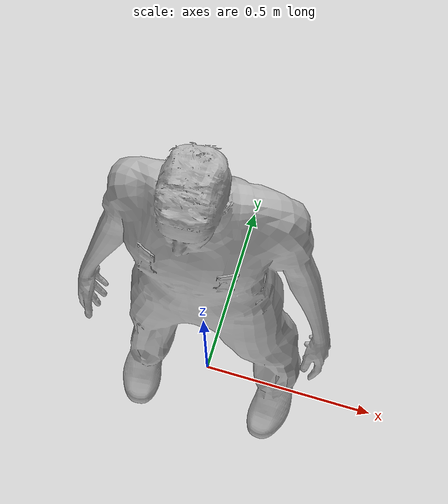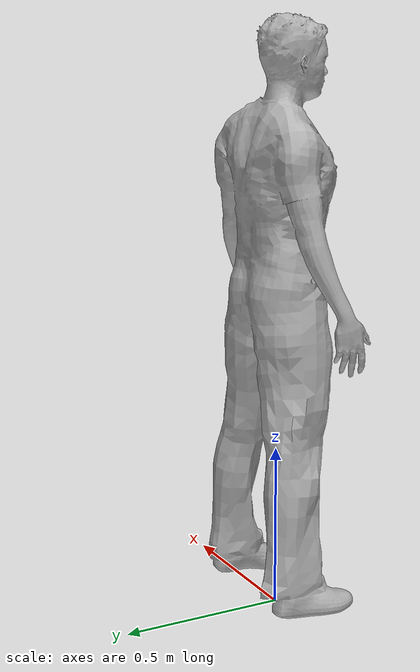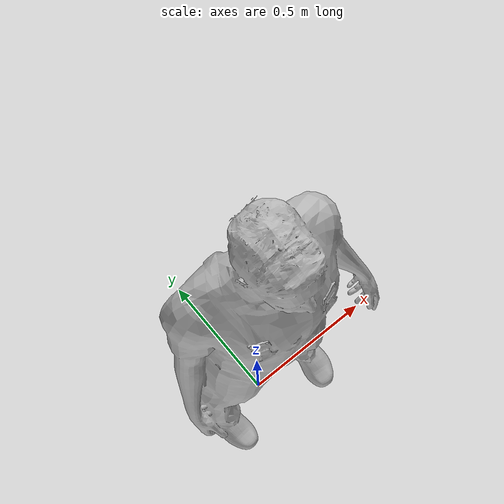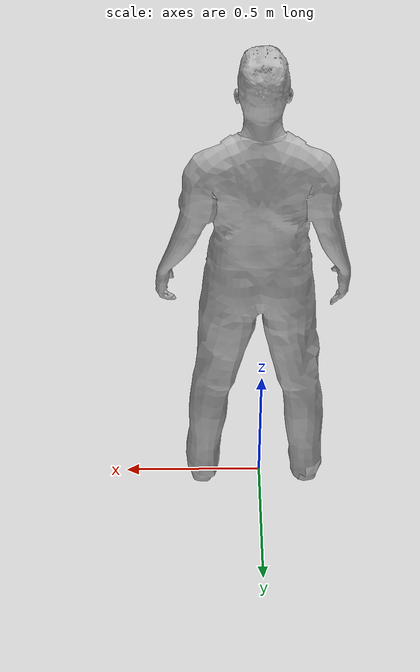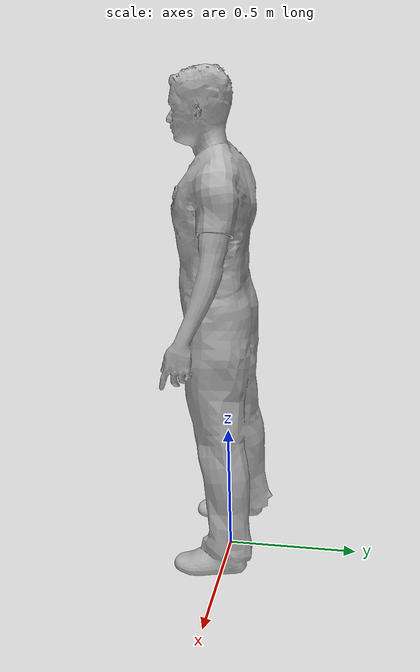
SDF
<?xml version="1.0" ?>
<sdf version="1.4">
  <model name="george">
    <link name="link">
      <inertial>
        <pose>0 -0.1 0.95 0 0 0</pose>
        <mass>80.0</mass>
        <inertia>
          <ixx>100</ixx>
          <ixy>0</ixy>
          <ixz>0</ixz>
          <iyy>100</iyy>
          <iyz>0</iyz>
          <izz>100</izz>
        </inertia>
      </inertial>

      <collision name="bottom">
        <pose>0 -0.1 0.01 0 0 0</pose>
        <geometry>
          <box>
            <size>0.35 0.35 0.02</size>
          </box>
        </geometry>
      </collision>

      <collision name="person">
        <pose>0 0 0.02 0.04 0 0</pose>
        <geometry>
          <mesh>
            <uri>model://george/meshes/georgeV2.dae</uri>
          </mesh>
        </geometry>
      </collision>

      <visual name="visual">
        <pose>0 0 0.02 0.04 0 0</pose>
        <geometry>
          <mesh>
            <uri>model://george/meshes/georgeV2.dae</uri>
          </mesh>
        </geometry>
      </visual>
    </link>
    <plugin name="p3d_base_controller" filename="libgazebo_ros_p3d.so">
      <alwaysOn>true</alwaysOn>
      <updateRate>50.0</updateRate>
      <bodyName>link</bodyName>
      <topicName>george/odom</topicName>
      <gaussianNoise>0.01</gaussianNoise>
      <frameName>world</frameName>
      <xyzOffsets>0 0 0</xyzOffsets>
      <rpyOffsets>0 0 0</rpyOffsets>
    </plugin>

  </model>
</sdf>
